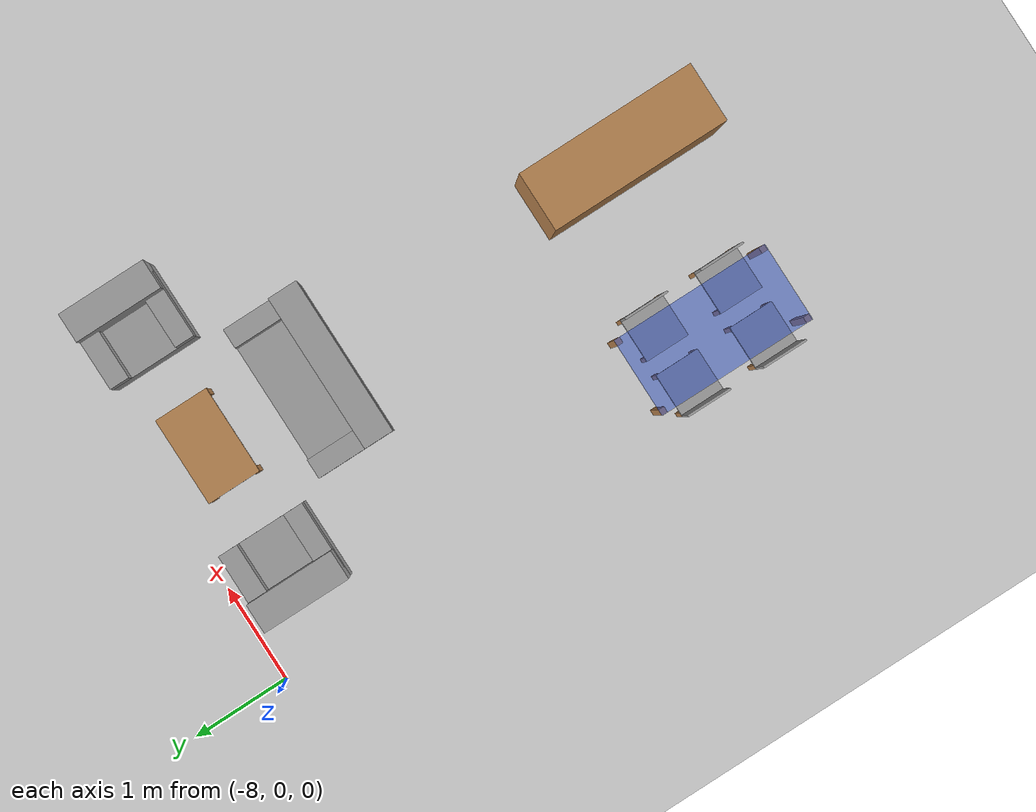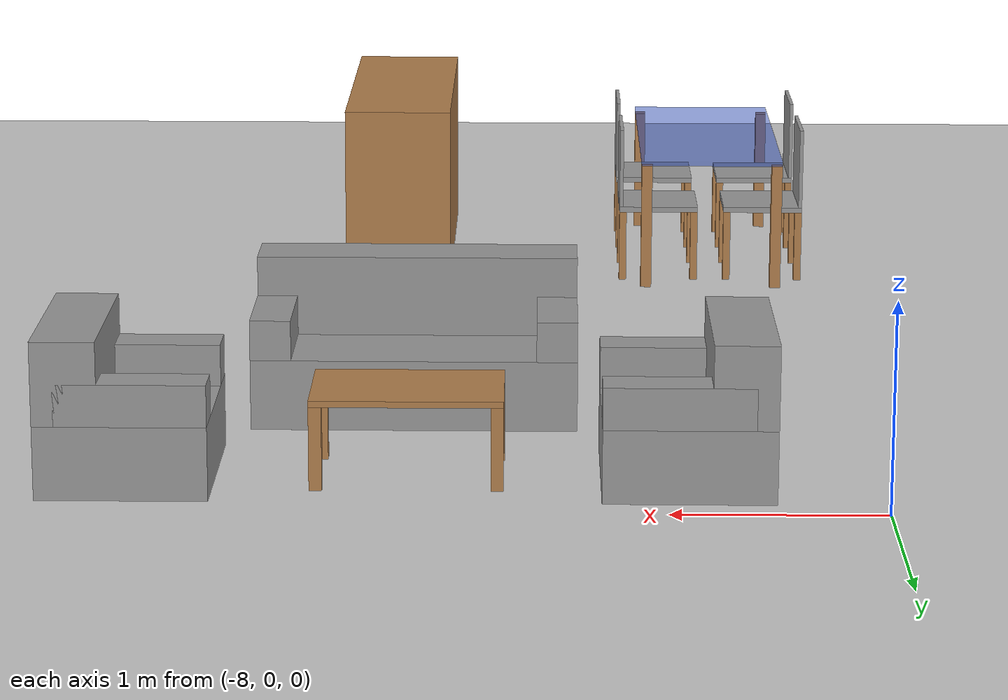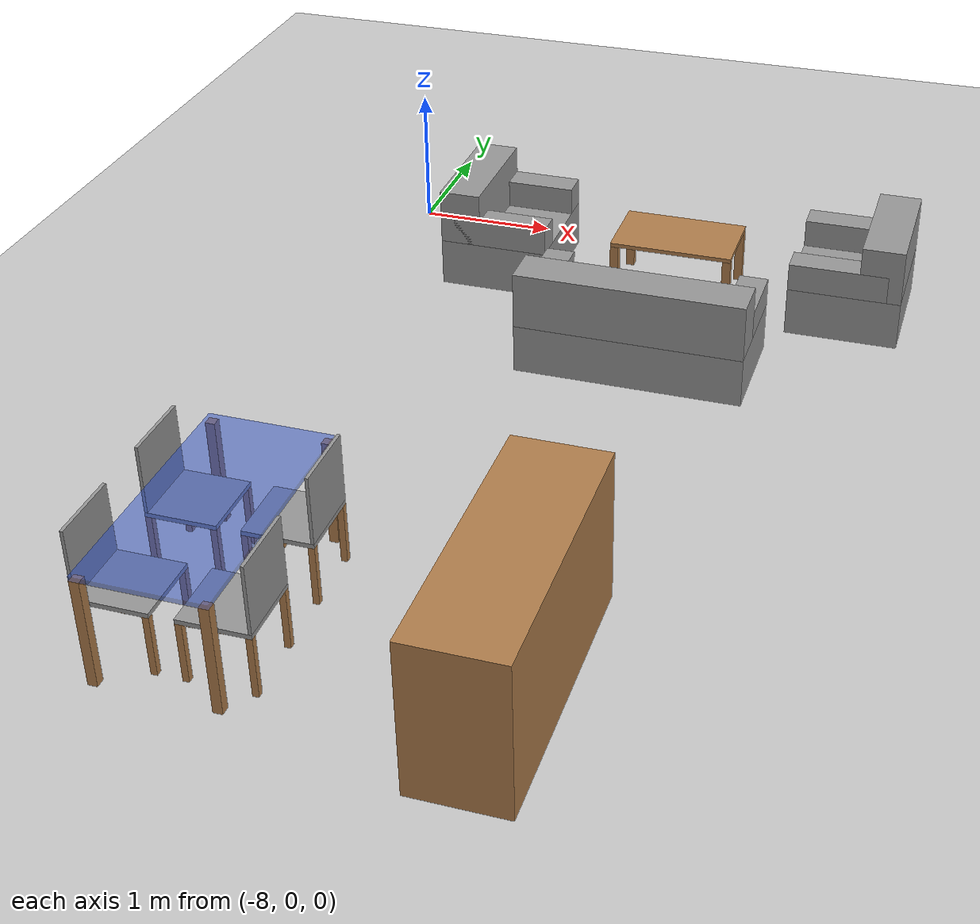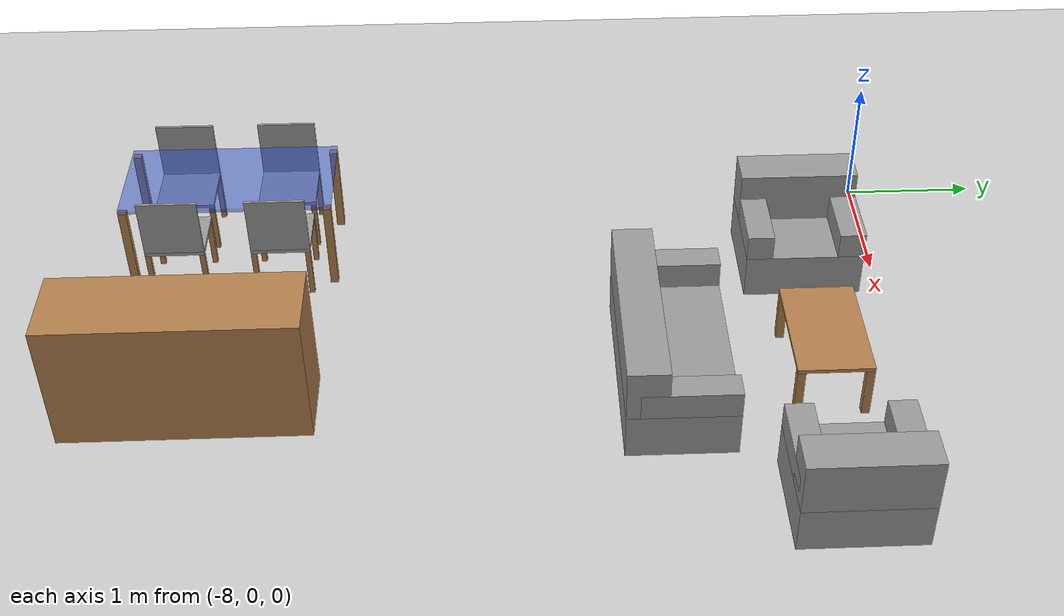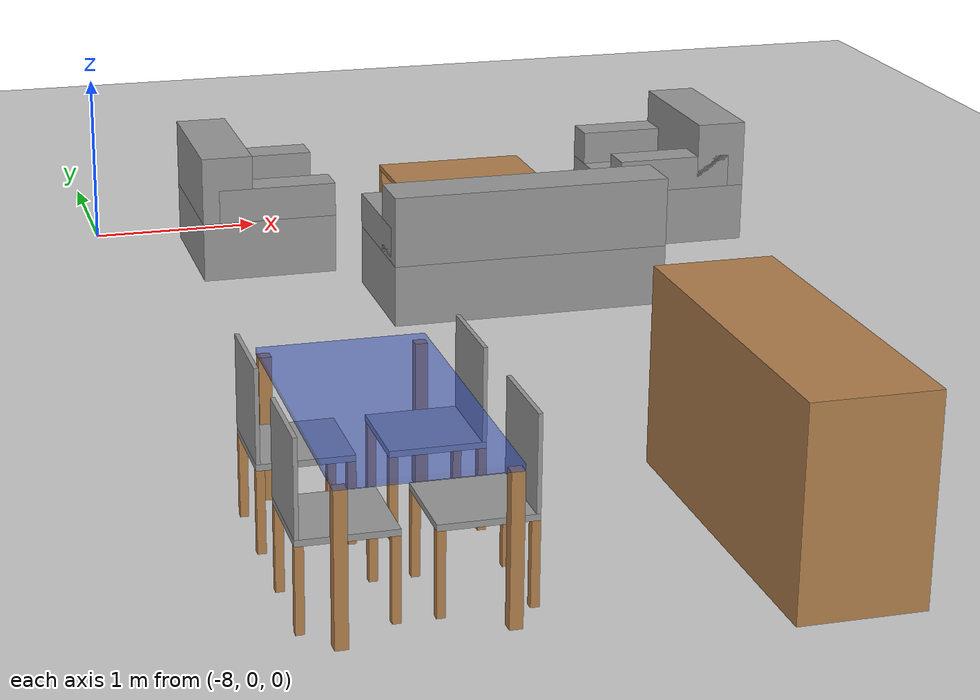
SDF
<sdf version="1.6">
 <world name="GrannyAnnie">
  <model name="ground_plane">
   <static>1</static>
   <link name="link">
    <collision name="collision">
     <geometry><plane><normal>0 0 1</normal><size>100 100</size></plane></geometry>
     <surface><friction><ode><mu>100</mu><mu2>50</mu2></ode></friction></surface>
    </collision>
    <visual name="visual">
     <cast_shadows>0</cast_shadows>
     <geometry><plane><normal>0 0 1</normal><size>100 100</size></plane></geometry>
     <material>
      <script><uri>file://media/materials/scripts/gazebo.material</uri><name>Gazebo/Grey</name></script>
     </material>
    </visual>
    <velocity_decay><linear>0</linear><angular>0</angular></velocity_decay>
   </link>
  </model>
  <model name="mesa_comedor">
   <link name="mesa_link">
    <inertial>
     <pose>0 0 0.513571 0 -0 0</pose>
     <mass>7</mass>
     <inertia>
      <ixx>1.28229</ixx>
      <ixy>0</ixy>
      <ixz>5.70179e-17</ixz>
      <iyy>3.10629</iyy>
      <iyz>0</iyz>
      <izz>3.4192</izz>
     </inertia>
    </inertial>
    <collision name="mesa_link_collision">
     <pose>0 0 0.725 0 -0 0</pose>
     <geometry><box><size>1.6 0.8 0.03</size></box></geometry>
     <surface><friction><ode><mu>1</mu><mu2>1</mu2></ode></friction></surface>
    </collision>
    <collision name="mesa_link_collision_pata_1_link">
     <pose>0.77 0.37 0.355 0 -0 0</pose>
     <geometry><box><size>0.06 0.06 0.71</size></box></geometry>
     <surface><friction><ode><mu>1</mu><mu2>1</mu2></ode></friction></surface>
     <surface><friction><ode><mu>1</mu><mu2>1</mu2></ode></friction></surface>
    </collision>
    <collision name="mesa_link_collision_pata_2_link">
     <pose>0.77 -0.37 0.355 0 -0 0</pose>
     <geometry><box><size>0.06 0.06 0.71</size></box></geometry>
     <surface><friction><ode><mu>1</mu><mu2>1</mu2></ode></friction></surface>
     <surface><friction><ode><mu>1</mu><mu2>1</mu2></ode></friction></surface>
    </collision>
    <collision name="mesa_link_collision_pata_3_link">
     <pose>-0.77 -0.37 0.355 0 -0 0</pose>
     <geometry><box><size>0.06 0.06 0.71</size></box></geometry>
     <surface><friction><ode><mu>1</mu><mu2>1</mu2></ode></friction></surface>
     <surface><friction><ode><mu>1</mu><mu2>1</mu2></ode></friction></surface>
    </collision>
    <collision name="mesa_link_collision_pata_4_link">
     <pose>-0.77 0.37 0.355 0 -0 0</pose>
     <geometry><box><size>0.06 0.06 0.71</size></box></geometry>
     <surface><friction><ode><mu>1</mu><mu2>1</mu2></ode></friction></surface>
     <surface><friction><ode><mu>1</mu><mu2>1</mu2></ode></friction></surface>
    </collision>
    <visual name="mesa_link_visual">
     <pose>0 0 0.725 0 -0 0</pose>
     <geometry><box><size>1.6 0.8 0.03</size></box></geometry>
     <material><script><name>Gazebo/BlueTransparent</name><uri>__default__</uri></script></material>
    </visual>
    <visual name="mesa_link_visual_pata_1_link">
     <pose>0.77 0.37 0.355 0 -0 0</pose>
     <geometry><box><size>0.06 0.06 0.71</size></box></geometry>
     <material><script><name>Gazebo/Wood</name><uri>__default__</uri></script></material>
    </visual>
    <visual name="mesa_link_visual_pata_2_link">
     <pose>0.77 -0.37 0.355 0 -0 0</pose>
     <geometry><box><size>0.06 0.06 0.71</size></box></geometry>
     <material><script><name>Gazebo/Wood</name><uri>__default__</uri></script></material>
    </visual>
    <visual name="mesa_link_visual_pata_3_link">
     <pose>-0.77 -0.37 0.355 0 -0 0</pose>
     <geometry><box><size>0.06 0.06 0.71</size></box></geometry>
     <material><script><name>Gazebo/Wood</name><uri>__default__</uri></script></material>
    </visual>
    <visual name="mesa_link_visual_pata_4_link">
     <pose>-0.77 0.37 0.355 0 -0 0</pose>
     <geometry><box><size>0.06 0.06 0.71</size></box></geometry>
     <material><script><name>Gazebo/Wood</name><uri>__default__</uri></script></material>
    </visual>
    <velocity_decay><linear>0</linear><angular>0</angular></velocity_decay>
    <velocity_decay><linear>0</linear><angular>0</angular></velocity_decay>
    <velocity_decay><linear>0</linear><angular>0</angular></velocity_decay>
    <velocity_decay><linear>0</linear><angular>0</angular></velocity_decay>
    <velocity_decay><linear>0</linear><angular>0</angular></velocity_decay>
    <self_collide>1</self_collide>
   </link>
   <pose>-7.39795 -4.99916 -0.000467 -0.000364 0.000419 1.5672</pose>
   <static>0</static>
  </model>
  <model name="silla_1">
   <link name="silla_link">
    <inertial>
     <pose>0.0215 0 0.353 0 -0 0</pose>
     <mass>2</mass>
     <inertia>
      <ixx>0.674432</ixx>
      <ixy>0</ixy>
      <ixz>-0.012986</ixz>
      <iyy>0.682753</iyy>
      <iyz>0</iyz>
      <izz>0.675561</izz>
     </inertia>
    </inertial>
    <collision name="silla_link_collision">
     <pose>0 0 0.415 0 -0 0</pose>
     <geometry><box><size>0.45 0.45 0.03</size></box></geometry>
     <surface><friction><ode><mu>1</mu><mu2>1</mu2></ode></friction></surface>
    </collision>
    <collision name="silla_link_collision_pata_1_link">
     <pose>0.205 0.205 0.2 0 -0 0</pose>
     <geometry><box><size>0.04 0.04 0.4</size></box></geometry>
     <surface><friction><ode><mu>1</mu><mu2>1</mu2></ode></friction></surface>
     <surface><friction><ode><mu>1</mu><mu2>1</mu2></ode></friction></surface>
    </collision>
    <collision name="silla_link_collision_pata_2_link">
     <pose>0.205 -0.205 0.2 0 -0 0</pose>
     <geometry><box><size>0.04 0.04 0.4</size></box></geometry>
     <surface><friction><ode><mu>1</mu><mu2>1</mu2></ode></friction></surface>
     <surface><friction><ode><mu>1</mu><mu2>1</mu2></ode></friction></surface>
    </collision>
    <collision name="silla_link_collision_pata_3_link">
     <pose>-0.205 -0.205 0.2 0 -0 0</pose>
     <geometry><box><size>0.04 0.04 0.4</size></box></geometry>
     <surface><friction><ode><mu>1</mu><mu2>1</mu2></ode></friction></surface>
     <surface><friction><ode><mu>1</mu><mu2>1</mu2></ode></friction></surface>
    </collision>
    <collision name="silla_link_collision_pata_4_link">
     <pose>-0.205 0.205 0.2 0 -0 0</pose>
     <geometry><box><size>0.04 0.04 0.4</size></box></geometry>
     <surface><friction><ode><mu>1</mu><mu2>1</mu2></ode></friction></surface>
     <surface><friction><ode><mu>1</mu><mu2>1</mu2></ode></friction></surface>
    </collision>
    <collision name="silla_link_collision_respaldo_link">
     <pose>0.215 0 0.655 0 -0 0</pose>
     <geometry><box><size>0.02 0.45 0.45</size></box></geometry>
     <surface><friction><ode><mu>1</mu><mu2>1</mu2></ode></friction></surface>
     <surface><friction><ode><mu>1</mu><mu2>1</mu2></ode></friction></surface>
    </collision>
    <visual name="silla_link_visual">
     <pose>0 0 0.415 0 -0 0</pose>
     <geometry><box><size>0.45 0.45 0.03</size></box></geometry>
     <material><script><name>Gazebo/Grey</name><uri>__default__</uri></script></material>
    </visual>
    <visual name="silla_link_visual_pata_1_link">
     <pose>0.205 0.205 0.2 0 -0 0</pose>
     <geometry><box><size>0.04 0.04 0.4</size></box></geometry>
     <material><script><name>Gazebo/Wood</name><uri>__default__</uri></script></material>
    </visual>
    <visual name="silla_link_visual_pata_2_link">
     <pose>0.205 -0.205 0.2 0 -0 0</pose>
     <geometry><box><size>0.04 0.04 0.4</size></box></geometry>
     <material><script><name>Gazebo/Wood</name><uri>__default__</uri></script></material>
    </visual>
    <visual name="silla_link_visual_pata_3_link">
     <pose>-0.205 -0.205 0.2 0 -0 0</pose>
     <geometry><box><size>0.04 0.04 0.4</size></box></geometry>
     <material><script><name>Gazebo/Wood</name><uri>__default__</uri></script></material>
    </visual>
    <visual name="silla_link_visual_pata_4_link">
     <pose>-0.205 0.205 0.2 0 -0 0</pose>
     <geometry><box><size>0.04 0.04 0.4</size></box></geometry>
     <material><script><name>Gazebo/Wood</name><uri>__default__</uri></script></material>
    </visual>
    <visual name="silla_link_visual_respaldo_link">
     <pose>0.215 0 0.655 0 -0 0</pose>
     <geometry><box><size>0.02 0.45 0.45</size></box></geometry>
     <material><script><name>Gazebo/Grey</name><uri>__default__</uri></script></material>
    </visual>
    <velocity_decay><linear>0</linear><angular>0</angular></velocity_decay>
    <velocity_decay><linear>0</linear><angular>0</angular></velocity_decay>
    <velocity_decay><linear>0</linear><angular>0</angular></velocity_decay>
    <velocity_decay><linear>0</linear><angular>0</angular></velocity_decay>
    <velocity_decay><linear>0</linear><angular>0</angular></velocity_decay>
    <velocity_decay><linear>0</linear><angular>0</angular></velocity_decay>
    <self_collide>1</self_collide>
   </link>
   <pose>-7.09993 -5.3999 -9.1e-05 -0.000184 -0.000264 -0.000208</pose>
   <static>0</static>
  </model>
  <model name="silla_2">
   <link name="silla_link">
    <inertial>
     <pose>0.0215 0 0.353 0 -0 0</pose>
     <mass>2</mass>
     <inertia>
      <ixx>0.674432</ixx>
      <ixy>0</ixy>
      <ixz>-0.012986</ixz>
      <iyy>0.682753</iyy>
      <iyz>0</iyz>
      <izz>0.675561</izz>
     </inertia>
    </inertial>
    <collision name="silla_link_collision">
     <pose>0 0 0.415 0 -0 0</pose>
     <geometry><box><size>0.45 0.45 0.03</size></box></geometry>
     <surface><friction><ode><mu>1</mu><mu2>1</mu2></ode></friction></surface>
    </collision>
    <collision name="silla_link_collision_pata_1_link">
     <pose>0.205 0.205 0.2 0 -0 0</pose>
     <geometry><box><size>0.04 0.04 0.4</size></box></geometry>
     <surface><friction><ode><mu>1</mu><mu2>1</mu2></ode></friction></surface>
     <surface><friction><ode><mu>1</mu><mu2>1</mu2></ode></friction></surface>
    </collision>
    <collision name="silla_link_collision_pata_2_link">
     <pose>0.205 -0.205 0.2 0 -0 0</pose>
     <geometry><box><size>0.04 0.04 0.4</size></box></geometry>
     <surface><friction><ode><mu>1</mu><mu2>1</mu2></ode></friction></surface>
     <surface><friction><ode><mu>1</mu><mu2>1</mu2></ode></friction></surface>
    </collision>
    <collision name="silla_link_collision_pata_3_link">
     <pose>-0.205 -0.205 0.2 0 -0 0</pose>
     <geometry><box><size>0.04 0.04 0.4</size></box></geometry>
     <surface><friction><ode><mu>1</mu><mu2>1</mu2></ode></friction></surface>
     <surface><friction><ode><mu>1</mu><mu2>1</mu2></ode></friction></surface>
    </collision>
    <collision name="silla_link_collision_pata_4_link">
     <pose>-0.205 0.205 0.2 0 -0 0</pose>
     <geometry><box><size>0.04 0.04 0.4</size></box></geometry>
     <surface><friction><ode><mu>1</mu><mu2>1</mu2></ode></friction></surface>
     <surface><friction><ode><mu>1</mu><mu2>1</mu2></ode></friction></surface>
    </collision>
    <collision name="silla_link_collision_respaldo_link">
     <pose>0.215 0 0.655 0 -0 0</pose>
     <geometry><box><size>0.02 0.45 0.45</size></box></geometry>
     <surface><friction><ode><mu>1</mu><mu2>1</mu2></ode></friction></surface>
     <surface><friction><ode><mu>1</mu><mu2>1</mu2></ode></friction></surface>
    </collision>
    <visual name="silla_link_visual">
     <pose>0 0 0.415 0 -0 0</pose>
     <geometry><box><size>0.45 0.45 0.03</size></box></geometry>
     <material><script><name>Gazebo/Grey</name><uri>__default__</uri></script></material>
    </visual>
    <visual name="silla_link_visual_pata_1_link">
     <pose>0.205 0.205 0.2 0 -0 0</pose>
     <geometry><box><size>0.04 0.04 0.4</size></box></geometry>
     <material><script><name>Gazebo/Wood</name><uri>__default__</uri></script></material>
    </visual>
    <visual name="silla_link_visual_pata_2_link">
     <pose>0.205 -0.205 0.2 0 -0 0</pose>
     <geometry><box><size>0.04 0.04 0.4</size></box></geometry>
     <material><script><name>Gazebo/Wood</name><uri>__default__</uri></script></material>
    </visual>
    <visual name="silla_link_visual_pata_3_link">
     <pose>-0.205 -0.205 0.2 0 -0 0</pose>
     <geometry><box><size>0.04 0.04 0.4</size></box></geometry>
     <material><script><name>Gazebo/Wood</name><uri>__default__</uri></script></material>
    </visual>
    <visual name="silla_link_visual_pata_4_link">
     <pose>-0.205 0.205 0.2 0 -0 0</pose>
     <geometry><box><size>0.04 0.04 0.4</size></box></geometry>
     <material><script><name>Gazebo/Wood</name><uri>__default__</uri></script></material>
    </visual>
    <visual name="silla_link_visual_respaldo_link">
     <pose>0.215 0 0.655 0 -0 0</pose>
     <geometry><box><size>0.02 0.45 0.45</size></box></geometry>
     <material><script><name>Gazebo/Grey</name><uri>__default__</uri></script></material>
    </visual>
    <velocity_decay><linear>0</linear><angular>0</angular></velocity_decay>
    <velocity_decay><linear>0</linear><angular>0</angular></velocity_decay>
    <velocity_decay><linear>0</linear><angular>0</angular></velocity_decay>
    <velocity_decay><linear>0</linear><angular>0</angular></velocity_decay>
    <velocity_decay><linear>0</linear><angular>0</angular></velocity_decay>
    <velocity_decay><linear>0</linear><angular>0</angular></velocity_decay>
    <self_collide>1</self_collide>
   </link>
   <pose>-7.09993 -4.5999 -9.1e-05 -0.000184 -0.000264 -0.000208</pose>
   <static>0</static>
  </model>
  <model name="silla_3">
   <link name="silla_link">
    <inertial>
     <pose>0.0215 0 0.353 0 -0 0</pose>
     <mass>2</mass>
     <inertia>
      <ixx>0.674432</ixx>
      <ixy>0</ixy>
      <ixz>-0.012986</ixz>
      <iyy>0.682753</iyy>
      <iyz>0</iyz>
      <izz>0.675561</izz>
     </inertia>
    </inertial>
    <collision name="silla_link_collision">
     <pose>0 0 0.415 0 -0 0</pose>
     <geometry><box><size>0.45 0.45 0.03</size></box></geometry>
     <surface><friction><ode><mu>1</mu><mu2>1</mu2></ode></friction></surface>
    </collision>
    <collision name="silla_link_collision_pata_1_link">
     <pose>0.205 0.205 0.2 0 -0 0</pose>
     <geometry><box><size>0.04 0.04 0.4</size></box></geometry>
     <surface><friction><ode><mu>1</mu><mu2>1</mu2></ode></friction></surface>
     <surface><friction><ode><mu>1</mu><mu2>1</mu2></ode></friction></surface>
    </collision>
    <collision name="silla_link_collision_pata_2_link">
     <pose>0.205 -0.205 0.2 0 -0 0</pose>
     <geometry><box><size>0.04 0.04 0.4</size></box></geometry>
     <surface><friction><ode><mu>1</mu><mu2>1</mu2></ode></friction></surface>
     <surface><friction><ode><mu>1</mu><mu2>1</mu2></ode></friction></surface>
    </collision>
    <collision name="silla_link_collision_pata_3_link">
     <pose>-0.205 -0.205 0.2 0 -0 0</pose>
     <geometry><box><size>0.04 0.04 0.4</size></box></geometry>
     <surface><friction><ode><mu>1</mu><mu2>1</mu2></ode></friction></surface>
     <surface><friction><ode><mu>1</mu><mu2>1</mu2></ode></friction></surface>
    </collision>
    <collision name="silla_link_collision_pata_4_link">
     <pose>-0.205 0.205 0.2 0 -0 0</pose>
     <geometry><box><size>0.04 0.04 0.4</size></box></geometry>
     <surface><friction><ode><mu>1</mu><mu2>1</mu2></ode></friction></surface>
     <surface><friction><ode><mu>1</mu><mu2>1</mu2></ode></friction></surface>
    </collision>
    <collision name="silla_link_collision_respaldo_link">
     <pose>0.215 0 0.655 0 -0 0</pose>
     <geometry><box><size>0.02 0.45 0.45</size></box></geometry>
     <surface><friction><ode><mu>1</mu><mu2>1</mu2></ode></friction></surface>
     <surface><friction><ode><mu>1</mu><mu2>1</mu2></ode></friction></surface>
    </collision>
    <visual name="silla_link_visual">
     <pose>0 0 0.415 0 -0 0</pose>
     <geometry><box><size>0.45 0.45 0.03</size></box></geometry>
     <material><script><name>Gazebo/Grey</name><uri>__default__</uri></script></material>
    </visual>
    <visual name="silla_link_visual_pata_1_link">
     <pose>0.205 0.205 0.2 0 -0 0</pose>
     <geometry><box><size>0.04 0.04 0.4</size></box></geometry>
     <material><script><name>Gazebo/Wood</name><uri>__default__</uri></script></material>
    </visual>
    <visual name="silla_link_visual_pata_2_link">
     <pose>0.205 -0.205 0.2 0 -0 0</pose>
     <geometry><box><size>0.04 0.04 0.4</size></box></geometry>
     <material><script><name>Gazebo/Wood</name><uri>__default__</uri></script></material>
    </visual>
    <visual name="silla_link_visual_pata_3_link">
     <pose>-0.205 -0.205 0.2 0 -0 0</pose>
     <geometry><box><size>0.04 0.04 0.4</size></box></geometry>
     <material><script><name>Gazebo/Wood</name><uri>__default__</uri></script></material>
    </visual>
    <visual name="silla_link_visual_pata_4_link">
     <pose>-0.205 0.205 0.2 0 -0 0</pose>
     <geometry><box><size>0.04 0.04 0.4</size></box></geometry>
     <material><script><name>Gazebo/Wood</name><uri>__default__</uri></script></material>
    </visual>
    <visual name="silla_link_visual_respaldo_link">
     <pose>0.215 0 0.655 0 -0 0</pose>
     <geometry><box><size>0.02 0.45 0.45</size></box></geometry>
     <material><script><name>Gazebo/Grey</name><uri>__default__</uri></script></material>
    </visual>
    <velocity_decay><linear>0</linear><angular>0</angular></velocity_decay>
    <velocity_decay><linear>0</linear><angular>0</angular></velocity_decay>
    <velocity_decay><linear>0</linear><angular>0</angular></velocity_decay>
    <velocity_decay><linear>0</linear><angular>0</angular></velocity_decay>
    <velocity_decay><linear>0</linear><angular>0</angular></velocity_decay>
    <velocity_decay><linear>0</linear><angular>0</angular></velocity_decay>
    <self_collide>1</self_collide>
   </link>
   <pose>-7.70007 -5.40009 0 0 -0 3.13981</pose>
   <static>0</static>
  </model>
  <model name="silla_4">
   <link name="silla_link">
    <inertial>
     <pose>0.0215 0 0.353 0 -0 0</pose>
     <mass>2</mass>
     <inertia>
      <ixx>0.674432</ixx>
      <ixy>0</ixy>
      <ixz>-0.012986</ixz>
      <iyy>0.682753</iyy>
      <iyz>0</iyz>
      <izz>0.675561</izz>
     </inertia>
    </inertial>
    <collision name="silla_link_collision">
     <pose>0 0 0.415 0 -0 0</pose>
     <geometry><box><size>0.45 0.45 0.03</size></box></geometry>
     <surface><friction><ode><mu>1</mu><mu2>1</mu2></ode></friction></surface>
    </collision>
    <collision name="silla_link_collision_pata_1_link">
     <pose>0.205 0.205 0.2 0 -0 0</pose>
     <geometry><box><size>0.04 0.04 0.4</size></box></geometry>
     <surface><friction><ode><mu>1</mu><mu2>1</mu2></ode></friction></surface>
     <surface><friction><ode><mu>1</mu><mu2>1</mu2></ode></friction></surface>
    </collision>
    <collision name="silla_link_collision_pata_2_link">
     <pose>0.205 -0.205 0.2 0 -0 0</pose>
     <geometry><box><size>0.04 0.04 0.4</size></box></geometry>
     <surface><friction><ode><mu>1</mu><mu2>1</mu2></ode></friction></surface>
     <surface><friction><ode><mu>1</mu><mu2>1</mu2></ode></friction></surface>
    </collision>
    <collision name="silla_link_collision_pata_3_link">
     <pose>-0.205 -0.205 0.2 0 -0 0</pose>
     <geometry><box><size>0.04 0.04 0.4</size></box></geometry>
     <surface><friction><ode><mu>1</mu><mu2>1</mu2></ode></friction></surface>
     <surface><friction><ode><mu>1</mu><mu2>1</mu2></ode></friction></surface>
    </collision>
    <collision name="silla_link_collision_pata_4_link">
     <pose>-0.205 0.205 0.2 0 -0 0</pose>
     <geometry><box><size>0.04 0.04 0.4</size></box></geometry>
     <surface><friction><ode><mu>1</mu><mu2>1</mu2></ode></friction></surface>
     <surface><friction><ode><mu>1</mu><mu2>1</mu2></ode></friction></surface>
    </collision>
    <collision name="silla_link_collision_respaldo_link">
     <pose>0.215 0 0.655 0 -0 0</pose>
     <geometry><box><size>0.02 0.45 0.45</size></box></geometry>
     <surface><friction><ode><mu>1</mu><mu2>1</mu2></ode></friction></surface>
     <surface><friction><ode><mu>1</mu><mu2>1</mu2></ode></friction></surface>
    </collision>
    <visual name="silla_link_visual">
     <pose>0 0 0.415 0 -0 0</pose>
     <geometry><box><size>0.45 0.45 0.03</size></box></geometry>
     <material><script><name>Gazebo/Grey</name><uri>__default__</uri></script></material>
    </visual>
    <visual name="silla_link_visual_pata_1_link">
     <pose>0.205 0.205 0.2 0 -0 0</pose>
     <geometry><box><size>0.04 0.04 0.4</size></box></geometry>
     <material><script><name>Gazebo/Wood</name><uri>__default__</uri></script></material>
    </visual>
    <visual name="silla_link_visual_pata_2_link">
     <pose>0.205 -0.205 0.2 0 -0 0</pose>
     <geometry><box><size>0.04 0.04 0.4</size></box></geometry>
     <material><script><name>Gazebo/Wood</name><uri>__default__</uri></script></material>
    </visual>
    <visual name="silla_link_visual_pata_3_link">
     <pose>-0.205 -0.205 0.2 0 -0 0</pose>
     <geometry><box><size>0.04 0.04 0.4</size></box></geometry>
     <material><script><name>Gazebo/Wood</name><uri>__default__</uri></script></material>
    </visual>
    <visual name="silla_link_visual_pata_4_link">
     <pose>-0.205 0.205 0.2 0 -0 0</pose>
     <geometry><box><size>0.04 0.04 0.4</size></box></geometry>
     <material><script><name>Gazebo/Wood</name><uri>__default__</uri></script></material>
    </visual>
    <visual name="silla_link_visual_respaldo_link">
     <pose>0.215 0 0.655 0 -0 0</pose>
     <geometry><box><size>0.02 0.45 0.45</size></box></geometry>
     <material><script><name>Gazebo/Grey</name><uri>__default__</uri></script></material>
    </visual>
    <velocity_decay><linear>0</linear><angular>0</angular></velocity_decay>
    <velocity_decay><linear>0</linear><angular>0</angular></velocity_decay>
    <velocity_decay><linear>0</linear><angular>0</angular></velocity_decay>
    <velocity_decay><linear>0</linear><angular>0</angular></velocity_decay>
    <velocity_decay><linear>0</linear><angular>0</angular></velocity_decay>
    <velocity_decay><linear>0</linear><angular>0</angular></velocity_decay>
    <self_collide>1</self_collide>
   </link>
   <pose>-7.70007 -4.60009 0 0 -0 3.13981</pose>
   <static>0</static>
  </model>
  <model name="mesa_salon">
   <link name="mesa_link">
    <inertial>
     <pose>0 0 0.3075 0 -0 0</pose>
     <mass>4</mass>
     <inertia>
      <ixx>0.666275</ixx>
      <ixy>1.92593e-34</ixy>
      <ixz>1.70697e-17</ixz>
      <iyy>0.899025</iyy>
      <iyz>4.26742e-18</iyz>
      <izz>0.97285</izz>
     </inertia>
    </inertial>
    <collision name="mesa_link_collision">
     <pose>0 0 0.415 0 -0 0</pose>
     <geometry><box><size>0.9 0.55 0.03</size></box></geometry>
     <surface><friction><ode><mu>1</mu><mu2>1</mu2></ode></friction></surface>
    </collision>
    <collision name="mesa_link_collision_pata_1_link">
     <pose>0.42 0.245 0.2 0 -0 0</pose>
     <geometry><box><size>0.06 0.06 0.4</size></box></geometry>
     <surface><friction><ode><mu>1</mu><mu2>1</mu2></ode></friction></surface>
     <surface><friction><ode><mu>1</mu><mu2>1</mu2></ode></friction></surface>
    </collision>
    <collision name="mesa_link_collision_pata_2_link">
     <pose>0.42 -0.245 0.2 0 -0 0</pose>
     <geometry><box><size>0.06 0.06 0.4</size></box></geometry>
     <surface><friction><ode><mu>1</mu><mu2>1</mu2></ode></friction></surface>
     <surface><friction><ode><mu>1</mu><mu2>1</mu2></ode></friction></surface>
    </collision>
    <collision name="mesa_link_collision_pata_3_link">
     <pose>-0.42 -0.245 0.2 0 -0 0</pose>
     <geometry><box><size>0.06 0.06 0.4</size></box></geometry>
     <surface><friction><ode><mu>1</mu><mu2>1</mu2></ode></friction></surface>
     <surface><friction><ode><mu>1</mu><mu2>1</mu2></ode></friction></surface>
    </collision>
    <collision name="mesa_link_collision_pata_4_link">
     <pose>-0.42 0.245 0.2 0 -0 0</pose>
     <geometry><box><size>0.06 0.06 0.4</size></box></geometry>
     <surface><friction><ode><mu>1</mu><mu2>1</mu2></ode></friction></surface>
     <surface><friction><ode><mu>1</mu><mu2>1</mu2></ode></friction></surface>
    </collision>
    <visual name="mesa_link_visual">
     <pose>0 0 0.415 0 -0 0</pose>
     <geometry><box><size>0.9 0.55 0.03</size></box></geometry>
     <material><script><name>Gazebo/Wood</name><uri>__default__</uri></script></material>
    </visual>
    <visual name="mesa_link_visual_pata_1_link">
     <pose>0.42 0.245 0.2 0 -0 0</pose>
     <geometry><box><size>0.06 0.06 0.4</size></box></geometry>
     <material><script><name>Gazebo/Wood</name><uri>__default__</uri></script></material>
    </visual>
    <visual name="mesa_link_visual_pata_2_link">
     <pose>0.42 -0.245 0.2 0 -0 0</pose>
     <geometry><box><size>0.06 0.06 0.4</size></box></geometry>
     <material><script><name>Gazebo/Wood</name><uri>__default__</uri></script></material>
    </visual>
    <visual name="mesa_link_visual_pata_3_link">
     <pose>-0.42 -0.245 0.2 0 -0 0</pose>
     <geometry><box><size>0.06 0.06 0.4</size></box></geometry>
     <material><script><name>Gazebo/Wood</name><uri>__default__</uri></script></material>
    </visual>
    <visual name="mesa_link_visual_pata_4_link">
     <pose>-0.42 0.245 0.2 0 -0 0</pose>
     <geometry><box><size>0.06 0.06 0.4</size></box></geometry>
     <material><script><name>Gazebo/Wood</name><uri>__default__</uri></script></material>
    </visual>
    <velocity_decay><linear>0</linear><angular>0</angular></velocity_decay>
    <velocity_decay><linear>0</linear><angular>0</angular></velocity_decay>
    <velocity_decay><linear>0</linear><angular>0</angular></velocity_decay>
    <velocity_decay><linear>0</linear><angular>0</angular></velocity_decay>
    <velocity_decay><linear>0</linear><angular>0</angular></velocity_decay>
    <self_collide>1</self_collide>
   </link>
   <pose>-5.79988 -0.599765 -0.000378 0.00059 0.000643 0.000582</pose>
   <static>0</static>
  </model>
  <model name="sofa_x2_salon">
   <link name="sofa_link">
    <inertial>
     <pose>0 0.011539 0.257692 0 -0 0</pose>
     <mass>13</mass>
     <inertia>
      <ixx>0.7625</ixx>
      <ixy>0</ixy>
      <ixz>0</ixz>
      <iyy>1.67673</iyy>
      <iyz>-0.0463462</iyz>
      <izz>1.44577</izz>
     </inertia>
    </inertial>
    <collision name="sofa_link_collision">
     <pose>0 0 0.175 0 -0 0</pose>
     <geometry><box><size>1.6 0.8 0.35</size></box></geometry>
     <surface><friction><ode><mu>1</mu><mu2>1</mu2></ode></friction></surface>
    </collision>
    <collision name="sofa_link_collision_brazo_1_link">
     <pose>0.7 -0.05 0.45 0 -0 0</pose>
     <geometry><box><size>0.2 0.7 0.2</size></box></geometry>
     <surface><friction><ode><mu>1</mu><mu2>1</mu2></ode></friction></surface>
     <surface><friction><ode><mu>1</mu><mu2>1</mu2></ode></friction></surface>
    </collision>
    <collision name="sofa_link_collision_brazo_2_link">
     <pose>-0.7 -0.05 0.45 0 -0 0</pose>
     <geometry><box><size>0.2 0.7 0.2</size></box></geometry>
     <surface><friction><ode><mu>1</mu><mu2>1</mu2></ode></friction></surface>
     <surface><friction><ode><mu>1</mu><mu2>1</mu2></ode></friction></surface>
    </collision>
    <collision name="sofa_link_collision_respaldo_link">
     <pose>0 0.25 0.55 0 -0 0</pose>
     <geometry><box><size>1.6 0.3 0.4</size></box></geometry>
     <surface><friction><ode><mu>1</mu><mu2>1</mu2></ode></friction></surface>
     <surface><friction><ode><mu>1</mu><mu2>1</mu2></ode></friction></surface>
    </collision>
    <visual name="sofa_link_visual">
     <pose>0 0 0.175 0 -0 0</pose>
     <geometry><box><size>1.6 0.8 0.35</size></box></geometry>
     <material><script><name>Gazebo/Grey</name><uri>__default__</uri></script></material>
    </visual>
    <visual name="sofa_link_visual_brazo_1_link">
     <pose>0.7 -0.05 0.45 0 -0 0</pose>
     <geometry><box><size>0.2 0.7 0.2</size></box></geometry>
     <material><script><name>Gazebo/Grey</name><uri>__default__</uri></script></material>
    </visual>
    <visual name="sofa_link_visual_brazo_2_link">
     <pose>-0.7 -0.05 0.45 0 -0 0</pose>
     <geometry><box><size>0.2 0.7 0.2</size></box></geometry>
     <material><script><name>Gazebo/Grey</name><uri>__default__</uri></script></material>
    </visual>
    <visual name="sofa_link_visual_respaldo_link">
     <pose>0 0.25 0.55 0 -0 0</pose>
     <geometry><box><size>1.6 0.3 0.4</size></box></geometry>
     <material><script><name>Gazebo/Grey</name><uri>__default__</uri></script></material>
    </visual>
    <velocity_decay><linear>0</linear><angular>0</angular></velocity_decay>
    <velocity_decay><linear>0</linear><angular>0</angular></velocity_decay>
    <velocity_decay><linear>0</linear><angular>0</angular></velocity_decay>
    <velocity_decay><linear>0</linear><angular>0</angular></velocity_decay>
    <self_collide>1</self_collide>
   </link>
   <pose>-5.80002 -1.69994 0 0 -0 3.13999</pose>
   <static>0</static>
  </model>
  <model name="sofa_x1_1_salon">
   <link name="sofa_link">
    <inertial>
     <pose>0 0.01875 0.309375 0 -0 0</pose>
     <mass>8</mass>
     <inertia>
      <ixx>0.705859</ixx>
      <ixy>0</ixy>
      <ixz>0</ixz>
      <iyy>0.886172</iyy>
      <iyz>-0.0385938</iyz>
      <izz>0.709687</izz>
     </inertia>
    </inertial>
    <collision name="sofa_link_collision">
     <pose>0 0 0.175 0 -0 0</pose>
     <geometry><box><size>0.9 0.8 0.35</size></box></geometry>
     <surface><friction><ode><mu>1</mu><mu2>1</mu2></ode></friction></surface>
    </collision>
    <collision name="sofa_link_collision_brazo_1_link">
     <pose>0.35 -0.05 0.45 0 -0 0</pose>
     <geometry><box><size>0.2 0.7 0.2</size></box></geometry>
     <surface><friction><ode><mu>1</mu><mu2>1</mu2></ode></friction></surface>
     <surface><friction><ode><mu>1</mu><mu2>1</mu2></ode></friction></surface>
    </collision>
    <collision name="sofa_link_collision_brazo_2_link">
     <pose>-0.35 -0.05 0.45 0 -0 0</pose>
     <geometry><box><size>0.2 0.7 0.2</size></box></geometry>
     <surface><friction><ode><mu>1</mu><mu2>1</mu2></ode></friction></surface>
     <surface><friction><ode><mu>1</mu><mu2>1</mu2></ode></friction></surface>
    </collision>
    <collision name="sofa_link_collision_respaldo_link">
     <pose>0 0.25 0.55 0 -0 0</pose>
     <geometry><box><size>0.9 0.3 0.4</size></box></geometry>
     <surface><friction><ode><mu>1</mu><mu2>1</mu2></ode></friction></surface>
     <surface><friction><ode><mu>1</mu><mu2>1</mu2></ode></friction></surface>
    </collision>
    <visual name="sofa_link_visual">
     <pose>0 0 0.175 0 -0 0</pose>
     <geometry><box><size>0.9 0.8 0.35</size></box></geometry>
     <material><script><name>Gazebo/Grey</name><uri>__default__</uri></script></material>
    </visual>
    <visual name="sofa_link_visual_brazo_1_link">
     <pose>0.35 -0.05 0.45 0 -0 0</pose>
     <geometry><box><size>0.2 0.7 0.2</size></box></geometry>
     <material><script><name>Gazebo/Grey</name><uri>__default__</uri></script></material>
    </visual>
    <visual name="sofa_link_visual_brazo_2_link">
     <pose>-0.35 -0.05 0.45 0 -0 0</pose>
     <geometry><box><size>0.2 0.7 0.2</size></box></geometry>
     <material><script><name>Gazebo/Grey</name><uri>__default__</uri></script></material>
    </visual>
    <visual name="sofa_link_visual_respaldo_link">
     <pose>0 0.25 0.55 0 -0 0</pose>
     <geometry><box><size>0.9 0.3 0.4</size></box></geometry>
     <material><script><name>Gazebo/Grey</name><uri>__default__</uri></script></material>
    </visual>
    <velocity_decay><linear>0</linear><angular>0</angular></velocity_decay>
    <velocity_decay><linear>0</linear><angular>0</angular></velocity_decay>
    <velocity_decay><linear>0</linear><angular>0</angular></velocity_decay>
    <velocity_decay><linear>0</linear><angular>0</angular></velocity_decay>
    <self_collide>1</self_collide>
   </link>
   <pose>-4.5 -0.6 0 0 0 -1.57</pose>
   <static>0</static>
  </model>
  <model name="sofa_x1_2_salon">
   <link name="sofa_link">
    <inertial>
     <pose>0 0.01875 0.309375 0 -0 0</pose>
     <mass>8</mass>
     <inertia>
      <ixx>0.705859</ixx>
      <ixy>0</ixy>
      <ixz>0</ixz>
      <iyy>0.886172</iyy>
      <iyz>-0.0385938</iyz>
      <izz>0.709687</izz>
     </inertia>
    </inertial>
    <collision name="sofa_link_collision">
     <pose>0 0 0.175 0 -0 0</pose>
     <geometry><box><size>0.9 0.8 0.35</size></box></geometry>
     <surface><friction><ode><mu>1</mu><mu2>1</mu2></ode></friction></surface>
    </collision>
    <collision name="sofa_link_collision_brazo_1_link">
     <pose>0.35 -0.05 0.45 0 -0 0</pose>
     <geometry><box><size>0.2 0.7 0.2</size></box></geometry>
     <surface><friction><ode><mu>1</mu><mu2>1</mu2></ode></friction></surface>
     <surface><friction><ode><mu>1</mu><mu2>1</mu2></ode></friction></surface>
    </collision>
    <collision name="sofa_link_collision_brazo_2_link">
     <pose>-0.35 -0.05 0.45 0 -0 0</pose>
     <geometry><box><size>0.2 0.7 0.2</size></box></geometry>
     <surface><friction><ode><mu>1</mu><mu2>1</mu2></ode></friction></surface>
     <surface><friction><ode><mu>1</mu><mu2>1</mu2></ode></friction></surface>
    </collision>
    <collision name="sofa_link_collision_respaldo_link">
     <pose>0 0.25 0.55 0 -0 0</pose>
     <geometry><box><size>0.9 0.3 0.4</size></box></geometry>
     <surface><friction><ode><mu>1</mu><mu2>1</mu2></ode></friction></surface>
     <surface><friction><ode><mu>1</mu><mu2>1</mu2></ode></friction></surface>
    </collision>
    <visual name="sofa_link_visual">
     <pose>0 0 0.175 0 -0 0</pose>
     <geometry><box><size>0.9 0.8 0.35</size></box></geometry>
     <material><script><name>Gazebo/Grey</name><uri>__default__</uri></script></material>
    </visual>
    <visual name="sofa_link_visual_brazo_1_link">
     <pose>0.35 -0.05 0.45 0 -0 0</pose>
     <geometry><box><size>0.2 0.7 0.2</size></box></geometry>
     <material><script><name>Gazebo/Grey</name><uri>__default__</uri></script></material>
    </visual>
    <visual name="sofa_link_visual_brazo_2_link">
     <pose>-0.35 -0.05 0.45 0 -0 0</pose>
     <geometry><box><size>0.2 0.7 0.2</size></box></geometry>
     <material><script><name>Gazebo/Grey</name><uri>__default__</uri></script></material>
    </visual>
    <visual name="sofa_link_visual_respaldo_link">
     <pose>0 0.25 0.55 0 -0 0</pose>
     <geometry><box><size>0.9 0.3 0.4</size></box></geometry>
     <material><script><name>Gazebo/Grey</name><uri>__default__</uri></script></material>
    </visual>
    <velocity_decay><linear>0</linear><angular>0</angular></velocity_decay>
    <velocity_decay><linear>0</linear><angular>0</angular></velocity_decay>
    <velocity_decay><linear>0</linear><angular>0</angular></velocity_decay>
    <velocity_decay><linear>0</linear><angular>0</angular></velocity_decay>
    <self_collide>1</self_collide>
   </link>
   <pose>-7.1 -0.6 0 0 -0 1.57</pose>
   <static>0</static>
  </model>
  <model name="barra">
   <link name="barra_link">
    <inertial>
     <pose>0 0 0.5 0 -0 0</pose>
     <mass>50</mass>
     <inertia><ixx>5</ixx><ixy>0</ixy><ixz>0</ixz><iyy>5</iyy><iyz>0</iyz><izz>5</izz></inertia>
    </inertial>
    <collision name="barra_link_collision">
     <pose>0 0 0.5 0 -0 0</pose>
     <geometry><box><size>1.8 0.6 1</size></box></geometry>
     <surface><friction><ode><mu>1</mu><mu2>1</mu2></ode></friction></surface>
    </collision>
    <visual name="barra_link_visual">
     <pose>0 0 0.5 0 -0 0</pose>
     <geometry><box><size>1.8 0.6 1</size></box></geometry>
     <material><script><name>Gazebo/Wood</name><uri>__default__</uri></script></material>
    </visual>
    <velocity_decay><linear>0</linear><angular>0</angular></velocity_decay>
    <self_collide>1</self_collide>
   </link>
   <pose>-5.59994 -5.1696 1.9e-05 -0.000102 -3.4e-05 1.56989</pose>
   <static>0</static>
  </model>
 </world>
</sdf>
